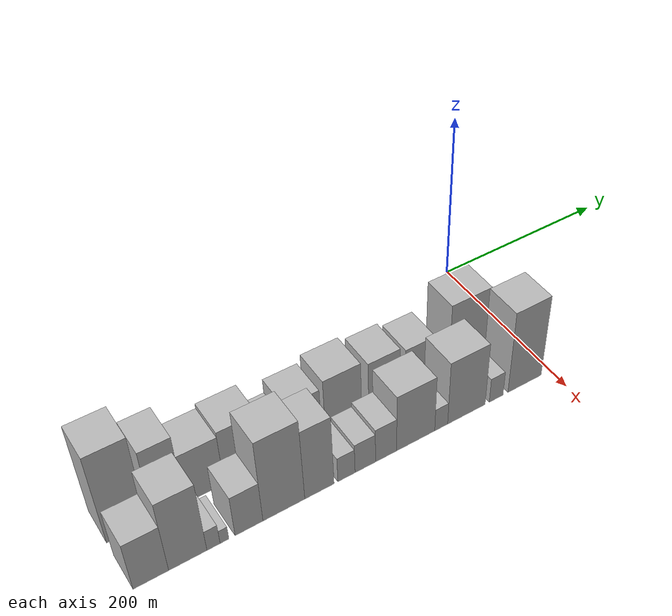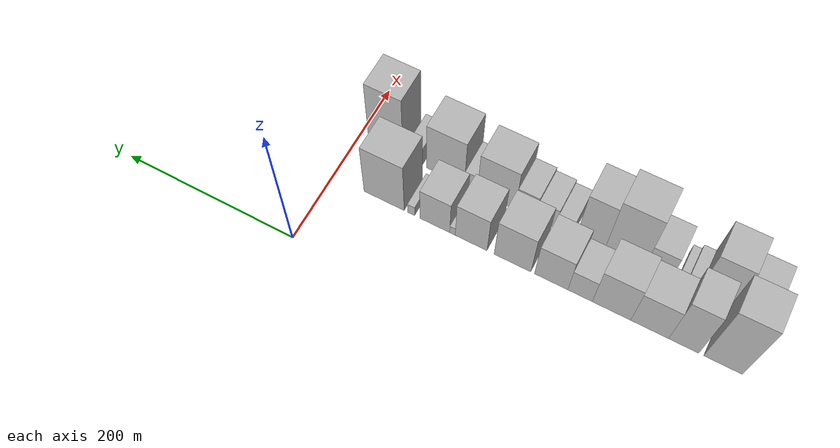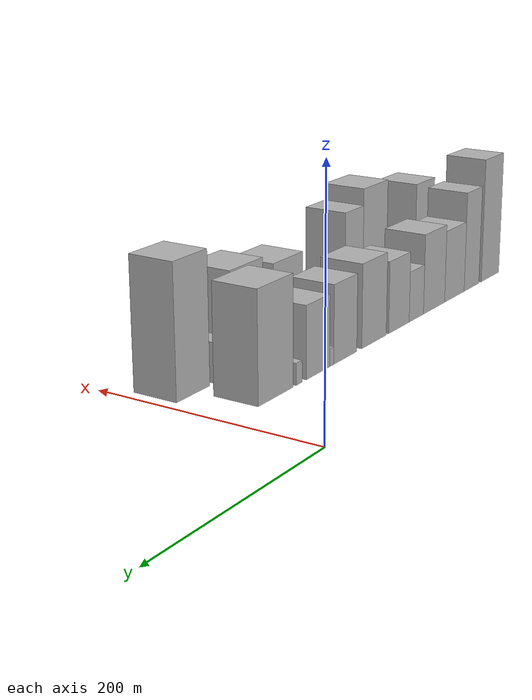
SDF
<sdf version="1.6">
 <world name="default">
  <model name="building_1">
   <static>1</static>
   <pose>100.0000 -430.5518 0 0.000000 0.000000 0.000000</pose>
   <link name="link">
    <pose>0 0 58.50 0 0 0</pose>
    <collision name="collision"><geometry><box><size>40.0000 38.8965 117.0000</size></box></geometry></collision>
    <visual name="visual">
     <cast_shadows>0</cast_shadows>
     <geometry><box><size>40.0000 38.8965 117.0000</size></box></geometry>
     <material>
      <script>
       <uri>model://HANNAS_wall/materials/scripts</uri>
       <uri>model://HANNAS_wall/materials/textures</uri>
       <name>vrc/HANNAS_wall</name>
      </script>
     </material>
    </visual>
   </link>
  </model>
  <model name="building_2">
   <static>1</static>
   <pose>100.0000 -390.5887 0 0.000000 0.000000 0.000000</pose>
   <link name="link">
    <pose>0 0 46.50 0 0 0</pose>
    <collision name="collision"><geometry><box><size>40.0000 31.0297 93.0000</size></box></geometry></collision>
    <visual name="visual">
     <cast_shadows>0</cast_shadows>
     <geometry><box><size>40.0000 31.0297 93.0000</size></box></geometry>
     <material>
      <script>
       <uri>model://HANNAS_wall/materials/scripts</uri>
       <uri>model://HANNAS_wall/materials/textures</uri>
       <name>vrc/HANNAS_wall</name>
      </script>
     </material>
    </visual>
   </link>
  </model>
  <model name="building_3">
   <static>1</static>
   <pose>100.0000 -355.3062 0 0.000000 0.000000 0.000000</pose>
   <link name="link">
    <pose>0 0 33.00 0 0 0</pose>
    <collision name="collision"><geometry><box><size>40.0000 39.5352 66.0000</size></box></geometry></collision>
    <visual name="visual">
     <cast_shadows>0</cast_shadows>
     <geometry><box><size>40.0000 39.5352 66.0000</size></box></geometry>
     <material>
      <script>
       <uri>model://HANNAS_wall/materials/scripts</uri>
       <uri>model://HANNAS_wall/materials/textures</uri>
       <name>vrc/HANNAS_wall</name>
      </script>
     </material>
    </visual>
   </link>
  </model>
  <model name="building_4">
   <static>1</static>
   <pose>100.0000 -315.1761 0 0.000000 0.000000 0.000000</pose>
   <link name="link">
    <pose>0 0 36.00 0 0 0</pose>
    <collision name="collision"><geometry><box><size>40.0000 40.7250 72.0000</size></box></geometry></collision>
    <visual name="visual">
     <cast_shadows>0</cast_shadows>
     <geometry><box><size>40.0000 40.7250 72.0000</size></box></geometry>
     <material>
      <script>
       <uri>model://HANNAS_wall/materials/scripts</uri>
       <uri>model://HANNAS_wall/materials/textures</uri>
       <name>vrc/HANNAS_wall</name>
      </script>
     </material>
    </visual>
   </link>
  </model>
  <model name="building_5">
   <static>1</static>
   <pose>100.0000 -281.6589 0 0.000000 0.000000 0.000000</pose>
   <link name="link">
    <pose>0 0 22.50 0 0 0</pose>
    <collision name="collision"><geometry><box><size>40.0000 26.3094 45.0000</size></box></geometry></collision>
    <visual name="visual">
     <cast_shadows>0</cast_shadows>
     <geometry><box><size>40.0000 26.3094 45.0000</size></box></geometry>
     <material>
      <script>
       <uri>model://HANNAS_wall/materials/scripts</uri>
       <uri>model://HANNAS_wall/materials/textures</uri>
       <name>vrc/HANNAS_wall</name>
      </script>
     </material>
    </visual>
   </link>
  </model>
  <model name="building_6">
   <static>1</static>
   <pose>100.0000 -250.3222 0 0.000000 0.000000 0.000000</pose>
   <link name="link">
    <pose>0 0 31.50 0 0 0</pose>
    <collision name="collision"><geometry><box><size>40.0000 36.3640 63.0000</size></box></geometry></collision>
    <visual name="visual">
     <cast_shadows>0</cast_shadows>
     <geometry><box><size>40.0000 36.3640 63.0000</size></box></geometry>
     <material>
      <script>
       <uri>model://HANNAS_wall/materials/scripts</uri>
       <uri>model://HANNAS_wall/materials/textures</uri>
       <name>vrc/HANNAS_wall</name>
      </script>
     </material>
    </visual>
   </link>
  </model>
  <model name="building_7">
   <static>1</static>
   <pose>100.0000 -207.7540 0 0.000000 0.000000 0.000000</pose>
   <link name="link">
    <pose>0 0 36.00 0 0 0</pose>
    <collision name="collision"><geometry><box><size>40.0000 40.7725 72.0000</size></box></geometry></collision>
    <visual name="visual">
     <cast_shadows>0</cast_shadows>
     <geometry><box><size>40.0000 40.7725 72.0000</size></box></geometry>
     <material>
      <script>
       <uri>model://HANNAS_wall/materials/scripts</uri>
       <uri>model://HANNAS_wall/materials/textures</uri>
       <name>vrc/HANNAS_wall</name>
      </script>
     </material>
    </visual>
   </link>
  </model>
  <model name="building_8">
   <static>1</static>
   <pose>100.0000 -161.3711 0 0.000000 0.000000 0.000000</pose>
   <link name="link">
    <pose>0 0 33.00 0 0 0</pose>
    <collision name="collision"><geometry><box><size>40.0000 35.9933 66.0000</size></box></geometry></collision>
    <visual name="visual">
     <cast_shadows>0</cast_shadows>
     <geometry><box><size>40.0000 35.9933 66.0000</size></box></geometry>
     <material>
      <script>
       <uri>model://HANNAS_wall/materials/scripts</uri>
       <uri>model://HANNAS_wall/materials/textures</uri>
       <name>vrc/HANNAS_wall</name>
      </script>
     </material>
    </visual>
   </link>
  </model>
  <model name="building_9">
   <static>1</static>
   <pose>100.0000 -140.2287 0 0.000000 0.000000 0.000000</pose>
   <link name="link">
    <pose>0 0 7.50 0 0 0</pose>
    <collision name="collision"><geometry><box><size>40.0000 6.2915 15.0000</size></box></geometry></collision>
    <visual name="visual">
     <cast_shadows>0</cast_shadows>
     <geometry><box><size>40.0000 6.2915 15.0000</size></box></geometry>
     <material>
      <script>
       <uri>model://HANNAS_wall/materials/scripts</uri>
       <uri>model://HANNAS_wall/materials/textures</uri>
       <name>vrc/HANNAS_wall</name>
      </script>
     </material>
    </visual>
   </link>
  </model>
  <model name="building_10">
   <static>1</static>
   <pose>100.0000 -119.8981 0 0.000000 0.000000 0.000000</pose>
   <link name="link">
    <pose>0 0 30.00 0 0 0</pose>
    <collision name="collision"><geometry><box><size>40.0000 34.3697 60.0000</size></box></geometry></collision>
    <visual name="visual">
     <cast_shadows>0</cast_shadows>
     <geometry><box><size>40.0000 34.3697 60.0000</size></box></geometry>
     <material>
      <script>
       <uri>model://HANNAS_wall/materials/scripts</uri>
       <uri>model://HANNAS_wall/materials/textures</uri>
       <name>vrc/HANNAS_wall</name>
      </script>
     </material>
    </visual>
   </link>
  </model>
  <model name="building_11">
   <static>1</static>
   <pose>100.0000 -92.5757 0 0.000000 0.000000 0.000000</pose>
   <link name="link">
    <pose>0 0 9.00 0 0 0</pose>
    <collision name="collision"><geometry><box><size>40.0000 8.2751 18.0000</size></box></geometry></collision>
    <visual name="visual">
     <cast_shadows>0</cast_shadows>
     <geometry><box><size>40.0000 8.2751 18.0000</size></box></geometry>
     <material>
      <script>
       <uri>model://HANNAS_wall/materials/scripts</uri>
       <uri>model://HANNAS_wall/materials/textures</uri>
       <name>vrc/HANNAS_wall</name>
      </script>
     </material>
    </visual>
   </link>
  </model>
  <model name="building_12">
   <static>1</static>
   <pose>100.0000 -60.7736 0 0.000000 0.000000 0.000000</pose>
   <link name="link">
    <pose>0 0 45.00 0 0 0</pose>
    <collision name="collision"><geometry><box><size>40.0000 47.3291 90.0000</size></box></geometry></collision>
    <visual name="visual">
     <cast_shadows>0</cast_shadows>
     <geometry><box><size>40.0000 47.3291 90.0000</size></box></geometry>
     <material>
      <script>
       <uri>model://HANNAS_wall/materials/scripts</uri>
       <uri>model://HANNAS_wall/materials/textures</uri>
       <name>vrc/HANNAS_wall</name>
      </script>
     </material>
    </visual>
   </link>
  </model>
  <model name="building_27">
   <static>1</static>
   <pose>155.0000 -433.5572 0 0.000000 0.000000 0.000000</pose>
   <link name="link">
    <pose>0 0 31.50 0 0 0</pose>
    <collision name="collision"><geometry><box><size>40.0000 32.8855 63.0000</size></box></geometry></collision>
    <visual name="visual">
     <cast_shadows>0</cast_shadows>
     <geometry><box><size>40.0000 32.8855 63.0000</size></box></geometry>
     <material>
      <script>
       <uri>model://HANNAS_wall/materials/scripts</uri>
       <uri>model://HANNAS_wall/materials/textures</uri>
       <name>vrc/HANNAS_wall</name>
      </script>
     </material>
    </visual>
   </link>
  </model>
  <model name="building_28">
   <static>1</static>
   <pose>155.0000 -399.0424 0 0.000000 0.000000 0.000000</pose>
   <link name="link">
    <pose>0 0 46.50 0 0 0</pose>
    <collision name="collision"><geometry><box><size>40.0000 36.1441 93.0000</size></box></geometry></collision>
    <visual name="visual">
     <cast_shadows>0</cast_shadows>
     <geometry><box><size>40.0000 36.1441 93.0000</size></box></geometry>
     <material>
      <script>
       <uri>model://HANNAS_wall/materials/scripts</uri>
       <uri>model://HANNAS_wall/materials/textures</uri>
       <name>vrc/HANNAS_wall</name>
      </script>
     </material>
    </visual>
   </link>
  </model>
  <model name="building_29">
   <static>1</static>
   <pose>155.0000 -374.6054 0 0.000000 0.000000 0.000000</pose>
   <link name="link">
    <pose>0 0 13.50 0 0 0</pose>
    <collision name="collision"><geometry><box><size>40.0000 12.7298 27.0000</size></box></geometry></collision>
    <visual name="visual">
     <cast_shadows>0</cast_shadows>
     <geometry><box><size>40.0000 12.7298 27.0000</size></box></geometry>
     <material>
      <script>
       <uri>model://HANNAS_wall/materials/scripts</uri>
       <uri>model://HANNAS_wall/materials/textures</uri>
       <name>vrc/HANNAS_wall</name>
      </script>
     </material>
    </visual>
   </link>
  </model>
  <model name="building_30">
   <static>1</static>
   <pose>155.0000 -363.9505 0 0.000000 0.000000 0.000000</pose>
   <link name="link">
    <pose>0 0 9.00 0 0 0</pose>
    <collision name="collision"><geometry><box><size>40.0000 8.5799 18.0000</size></box></geometry></collision>
    <visual name="visual">
     <cast_shadows>0</cast_shadows>
     <geometry><box><size>40.0000 8.5799 18.0000</size></box></geometry>
     <material>
      <script>
       <uri>model://HANNAS_wall/materials/scripts</uri>
       <uri>model://HANNAS_wall/materials/textures</uri>
       <name>vrc/HANNAS_wall</name>
      </script>
     </material>
    </visual>
   </link>
  </model>
  <model name="building_31">
   <static>1</static>
   <pose>155.0000 -339.7884 0 0.000000 0.000000 0.000000</pose>
   <link name="link">
    <pose>0 0 27.00 0 0 0</pose>
    <collision name="collision"><geometry><box><size>40.0000 27.7443 54.0000</size></box></geometry></collision>
    <visual name="visual">
     <cast_shadows>0</cast_shadows>
     <geometry><box><size>40.0000 27.7443 54.0000</size></box></geometry>
     <material>
      <script>
       <uri>model://HANNAS_wall/materials/scripts</uri>
       <uri>model://HANNAS_wall/materials/textures</uri>
       <name>vrc/HANNAS_wall</name>
      </script>
     </material>
    </visual>
   </link>
  </model>
  <model name="building_32">
   <static>1</static>
   <pose>155.0000 -304.5510 0 0.000000 0.000000 0.000000</pose>
   <link name="link">
    <pose>0 0 54.00 0 0 0</pose>
    <collision name="collision"><geometry><box><size>40.0000 42.7304 108.0000</size></box></geometry></collision>
    <visual name="visual">
     <cast_shadows>0</cast_shadows>
     <geometry><box><size>40.0000 42.7304 108.0000</size></box></geometry>
     <material>
      <script>
       <uri>model://HANNAS_wall/materials/scripts</uri>
       <uri>model://HANNAS_wall/materials/textures</uri>
       <name>vrc/HANNAS_wall</name>
      </script>
     </material>
    </visual>
   </link>
  </model>
  <model name="building_33">
   <static>1</static>
   <pose>155.0000 -267.7677 0 0.000000 0.000000 0.000000</pose>
   <link name="link">
    <pose>0 0 46.50 0 0 0</pose>
    <collision name="collision"><geometry><box><size>40.0000 30.8363 93.0000</size></box></geometry></collision>
    <visual name="visual">
     <cast_shadows>0</cast_shadows>
     <geometry><box><size>40.0000 30.8363 93.0000</size></box></geometry>
     <material>
      <script>
       <uri>model://HANNAS_wall/materials/scripts</uri>
       <uri>model://HANNAS_wall/materials/textures</uri>
       <name>vrc/HANNAS_wall</name>
      </script>
     </material>
    </visual>
   </link>
  </model>
  <model name="building_34">
   <static>1</static>
   <pose>155.0000 -239.1030 0 0.000000 0.000000 0.000000</pose>
   <link name="link">
    <pose>0 0 16.50 0 0 0</pose>
    <collision name="collision"><geometry><box><size>40.0000 18.4930 33.0000</size></box></geometry></collision>
    <visual name="visual">
     <cast_shadows>0</cast_shadows>
     <geometry><box><size>40.0000 18.4930 33.0000</size></box></geometry>
     <material>
      <script>
       <uri>model://HANNAS_wall/materials/scripts</uri>
       <uri>model://HANNAS_wall/materials/textures</uri>
       <name>vrc/HANNAS_wall</name>
      </script>
     </material>
    </visual>
   </link>
  </model>
  <model name="building_35">
   <static>1</static>
   <pose>155.0000 -218.6538 0 0.000000 0.000000 0.000000</pose>
   <link name="link">
    <pose>0 0 19.50 0 0 0</pose>
    <collision name="collision"><geometry><box><size>40.0000 22.4055 39.0000</size></box></geometry></collision>
    <visual name="visual">
     <cast_shadows>0</cast_shadows>
     <geometry><box><size>40.0000 22.4055 39.0000</size></box></geometry>
     <material>
      <script>
       <uri>model://HANNAS_wall/materials/scripts</uri>
       <uri>model://HANNAS_wall/materials/textures</uri>
       <name>vrc/HANNAS_wall</name>
      </script>
     </material>
    </visual>
   </link>
  </model>
  <model name="building_36">
   <static>1</static>
   <pose>155.0000 -195.7575 0 0.000000 0.000000 0.000000</pose>
   <link name="link">
    <pose>0 0 22.50 0 0 0</pose>
    <collision name="collision"><geometry><box><size>40.0000 23.3871 45.0000</size></box></geometry></collision>
    <visual name="visual">
     <cast_shadows>0</cast_shadows>
     <geometry><box><size>40.0000 23.3871 45.0000</size></box></geometry>
     <material>
      <script>
       <uri>model://HANNAS_wall/materials/scripts</uri>
       <uri>model://HANNAS_wall/materials/textures</uri>
       <name>vrc/HANNAS_wall</name>
      </script>
     </material>
    </visual>
   </link>
  </model>
  <model name="building_37">
   <static>1</static>
   <pose>155.0000 -162.3110 0 0.000000 0.000000 0.000000</pose>
   <link name="link">
    <pose>0 0 37.50 0 0 0</pose>
    <collision name="collision"><geometry><box><size>40.0000 43.5059 75.0000</size></box></geometry></collision>
    <visual name="visual">
     <cast_shadows>0</cast_shadows>
     <geometry><box><size>40.0000 43.5059 75.0000</size></box></geometry>
     <material>
      <script>
       <uri>model://HANNAS_wall/materials/scripts</uri>
       <uri>model://HANNAS_wall/materials/textures</uri>
       <name>vrc/HANNAS_wall</name>
      </script>
     </material>
    </visual>
   </link>
  </model>
  <model name="building_38">
   <static>1</static>
   <pose>155.0000 -133.0314 0 0.000000 0.000000 0.000000</pose>
   <link name="link">
    <pose>0 0 15.00 0 0 0</pose>
    <collision name="collision"><geometry><box><size>40.0000 15.0533 30.0000</size></box></geometry></collision>
    <visual name="visual">
     <cast_shadows>0</cast_shadows>
     <geometry><box><size>40.0000 15.0533 30.0000</size></box></geometry>
     <material>
      <script>
       <uri>model://HANNAS_wall/materials/scripts</uri>
       <uri>model://HANNAS_wall/materials/textures</uri>
       <name>vrc/HANNAS_wall</name>
      </script>
     </material>
    </visual>
   </link>
  </model>
  <model name="building_39">
   <static>1</static>
   <pose>155.0000 -103.1621 0 0.000000 0.000000 0.000000</pose>
   <link name="link">
    <pose>0 0 42.00 0 0 0</pose>
    <collision name="collision"><geometry><box><size>40.0000 44.6851 84.0000</size></box></geometry></collision>
    <visual name="visual">
     <cast_shadows>0</cast_shadows>
     <geometry><box><size>40.0000 44.6851 84.0000</size></box></geometry>
     <material>
      <script>
       <uri>model://HANNAS_wall/materials/scripts</uri>
       <uri>model://HANNAS_wall/materials/textures</uri>
       <name>vrc/HANNAS_wall</name>
      </script>
     </material>
    </visual>
   </link>
  </model>
  <model name="building_40">
   <static>1</static>
   <pose>155.0000 -67.3736 0 0.000000 0.000000 0.000000</pose>
   <link name="link">
    <pose>0 0 16.50 0 0 0</pose>
    <collision name="collision"><geometry><box><size>40.0000 16.8920 33.0000</size></box></geometry></collision>
    <visual name="visual">
     <cast_shadows>0</cast_shadows>
     <geometry><box><size>40.0000 16.8920 33.0000</size></box></geometry>
     <material>
      <script>
       <uri>model://HANNAS_wall/materials/scripts</uri>
       <uri>model://HANNAS_wall/materials/textures</uri>
       <name>vrc/HANNAS_wall</name>
      </script>
     </material>
    </visual>
   </link>
  </model>
  <model name="building_41">
   <static>1</static>
   <pose>155.0000 -32.0951 0 0.000000 0.000000 0.000000</pose>
   <link name="link">
    <pose>0 0 54.00 0 0 0</pose>
    <collision name="collision"><geometry><box><size>40.0000 41.6651 108.0000</size></box></geometry></collision>
    <visual name="visual">
     <cast_shadows>0</cast_shadows>
     <geometry><box><size>40.0000 41.6651 108.0000</size></box></geometry>
     <material>
      <script>
       <uri>model://HANNAS_wall/materials/scripts</uri>
       <uri>model://HANNAS_wall/materials/textures</uri>
       <name>vrc/HANNAS_wall</name>
      </script>
     </material>
    </visual>
   </link>
  </model>
 </world>
</sdf>
